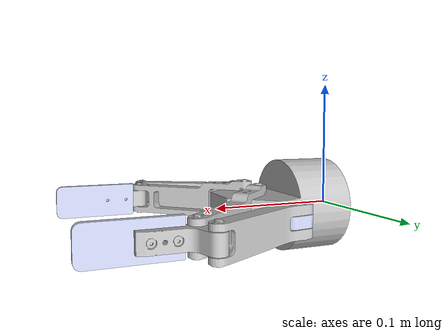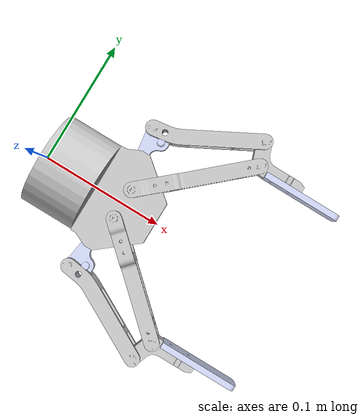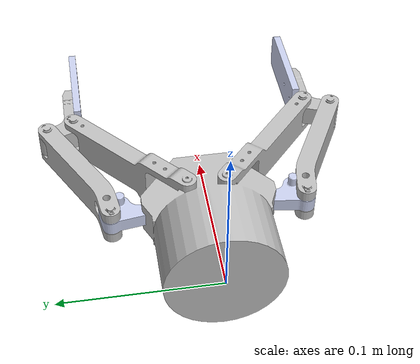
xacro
<?xml version="1.0"?>
<robot name="robotiq_2f_140" xmlns:xacro="http://ros.org/wiki/xacro">
  <xacro:include filename="$(find robotiq_description)/urdf/robotiq_2f_140/robotiq_2f_140.urdf.xacro" />
  <xacro:robotiq_2f_140 prefix=""/>

  <!-- world -->

</robot>

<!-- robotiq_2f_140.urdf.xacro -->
<robot xmlns:xacro="http://ros.org/wiki/xacro">

  <xacro:macro name="robotiq_2f_140_tcp" params="prefix">
    <link name="${prefix}tcp" />

    <joint name="${prefix}tcp_joint" type="fixed">
      <origin xyz="0.24127678495 0 0" rpy="0 0 0" />
      <parent link="${prefix}base_link" />
      <child link="${prefix}tcp" />
    </joint>
  </xacro:macro>

<xacro:macro name="inner_knuckle" params="prefix fingerprefix">
  <link name="${prefix}${fingerprefix}inner_knuckle">
    <inertial>
      <origin xyz="0.0361850676948983 -0.0331675189831137 -1.21207146841943E-08" rpy="0 0 0" />
      <mass value="0.0174460087279995" />
      <inertia
        ixx="1.15871030484505E-06"
        ixy="1.18962145386134E-06"
        ixz="-8.39568250113456E-14"
        iyy="1.41683380026142E-06"
        iyz="6.84207447322716E-14"
        izz="2.39357586071014E-06" />
    </inertial>
    <visual>
      <origin xyz="0 0 0" rpy="0 0 0" />
      <geometry>
        <mesh filename="package://robotiq_description/meshes/robotiq_2f_140/visual/inner_knuckle.dae" />
      </geometry>
      <material name="">
        <color rgba="0.752941176470588 0.752941176470588 0.752941176470588 1" />
      </material>
    </visual>
    <collision>
      <origin xyz="0 0 0" rpy="0 0 0" />
      <geometry>
        <mesh filename="package://robotiq_description/meshes/robotiq_2f_140/collision/inner_knuckle.stl" />
      </geometry>
    </collision>
  </link>
</xacro:macro>

<xacro:macro name="outer_knuckle" params="prefix fingerprefix">
  <link name="${prefix}${fingerprefix}outer_knuckle">
    <inertial>
      <origin xyz="0.000553430078305425 -0.0113324166394055 -2.069203532776E-08" rpy="0 0 0" />
      <mass value="0.00786620962275458" />
      <inertia
        ixx="0"
        ixy="0"
        ixz="0"
        iyy="0"
        iyz="0"
        izz="0" />
    </inertial>
    <visual>
      <origin xyz="0 0 0" rpy="0 0 0" />
      <geometry>
        <mesh filename="package://robotiq_description/meshes/robotiq_2f_140/visual/outer_knuckle.dae" />
      </geometry>
      <material name="">
        <color rgba="0.792156862745098 0.819607843137255 0.933333333333333 1" />
      </material>
    </visual>
    <collision>
      <origin xyz="0 0 0" rpy="0 0 0" />
      <geometry>
        <mesh filename="package://robotiq_description/meshes/robotiq_2f_140/collision/outer_knuckle.stl" />
      </geometry>
    </collision>
  </link>
</xacro:macro>

<xacro:macro name="outer_finger" params="prefix fingerprefix">
  <link name="${prefix}${fingerprefix}outer_finger">
    <inertial>
      <origin xyz="0.037582513422451 -0.0147933878405319 1.75722175258395E-09" rpy="0 0 0" />
      <mass value="0.0164998179601088" />
      <inertia
        ixx="3.63881150640202E-07"
        ixy="7.77163079871056E-07"
        ixz="3.83932554975091E-15"
        iyy="1.72399139003576E-06"
        iyz="-6.12077326039638E-15"
        izz="2.0741644702864E-06" />
    </inertial>
    <visual>
      <origin xyz="0 0 0" rpy="0 0 0" />
      <geometry>
        <mesh filename="package://robotiq_description/meshes/robotiq_2f_140/visual/outer_finger.dae" />
      </geometry>
      <material name="">
        <color rgba="0.752941176470588 0.752941176470588 0.752941176470588 1" />
      </material>
    </visual>
    <collision>
      <origin xyz="0 0 0" rpy="0 0 0" />
      <geometry>
        <mesh filename="package://robotiq_description/meshes/robotiq_2f_140/collision/outer_finger.stl" />
      </geometry>
    </collision>
  </link>
</xacro:macro>

<xacro:macro name="inner_finger" params="prefix fingerprefix">
  <link name="${prefix}${fingerprefix}inner_finger">
    <inertial>
      <origin xyz="0.0138261523043157 0.012041065004881 -2.07110001536426E-15" rpy="0 0 0" />
      <mass value="0.00728069074391804" />
      <inertia
        ixx="2.80233056217759E-09"
        ixy="-1.06385436552863E-08"
        ixz="-6.39274552405216E-21"
        iyy="5.288119896764E-08"
        iyz="-1.63868227162773E-21"
        izz="5.56835295298176E-08" />
    </inertial>
    <visual>
      <origin xyz="0 0 0" rpy="0 0 0" />
      <geometry>
        <mesh filename="package://robotiq_description/meshes/robotiq_2f_140/visual/inner_finger.dae" />
      </geometry>
      <material name="">
        <color rgba="0.752941176470588 0.752941176470588 0.752941176470588 1" />
      </material>
    </visual>
    <collision>
      <origin xyz="0 0 0" rpy="0 0 0" />
      <geometry>
        <mesh filename="package://robotiq_description/meshes/robotiq_2f_140/collision/inner_finger.stl" />
      </geometry>
    </collision>
  </link>
</xacro:macro>

<xacro:macro name="fingertip" params="prefix fingerprefix">
  <link name="${prefix}${fingerprefix}fingertip">
    <inertial>
      <origin xyz="-0.000109801182224895 0.00317755672771076 6.71012101645093E-17" rpy="0 0 0" />
      <mass value="0.0110245686419432" />
      <inertia
        ixx="2.08902759828054E-08"
        ixy="4.60038120722903E-10"
        ixz="1.38333794517888E-23"
        iyy="1.01307935181161E-11"
        iyz="-6.28172104669565E-22"
        izz="2.09004067763235E-08" />
    </inertial>
    <visual>
      <origin xyz="0 0 0" rpy="0 0 0" />
      <geometry>
        <mesh filename="package://robotiq_description/meshes/robotiq_2f_140/visual/fingertip.dae" />
      </geometry>
      <material name="">
        <color rgba="0.792156862745098 0.819607843137255 0.933333333333333 1" />
      </material>
    </visual>
    <collision>
      <origin xyz="0 0 0" rpy="0 0 0" />
      <geometry>
        <mesh filename="package://robotiq_description/meshes/robotiq_2f_140/collision/fingertip.stl" />
      </geometry>
    </collision>
  </link>
</xacro:macro>

<xacro:macro name="fingerpad" params="prefix fingerprefix">
  <link name="${prefix}${fingerprefix}fingerpad"/>
</xacro:macro>

<xacro:macro name="inner_knuckle_joint" params="prefix fingerprefix reflect">
  <joint name="${prefix}${fingerprefix}inner_knuckle_joint" type="revolute">
    <origin xyz="0.06942 ${reflect * -0.0127} 0" rpy="${(reflect -1)*0} ${(reflect -1)*pi/2} ${(reflect -1)*pi/2}" />
    <parent link="${prefix}base_link" />
    <child link="${prefix}${fingerprefix}inner_knuckle" />
    <axis xyz="0 0 1" />
    <limit lower="-3.14" upper="3.14" velocity="2.0" effort="176" />
    <mimic joint="${prefix}left_outer_knuckle_joint" multiplier="${1}" offset="0" />
  </joint>
</xacro:macro>

<xacro:macro name="left_outer_knuckle_joint" params="prefix">
  <joint name="${prefix}left_outer_knuckle_joint" type="revolute">
    <origin xyz="0.062905 0.030601 0" rpy="0 ${pi} ${pi}" />
    <parent link="${prefix}base_link" />
    <child link="${prefix}left_outer_knuckle" />
    <axis xyz="0 0 1" />
    <limit lower="0" upper="0.786522656" velocity="2.0" effort="176" />
  </joint>
</xacro:macro>

<!-- y = ${5.8749050196226E-17 + pi}-->
<xacro:macro name="right_outer_knuckle_joint" params="prefix">
  <joint name="${prefix}right_outer_knuckle_joint" type="revolute">
    <origin xyz="0.062905 -0.030601 0" rpy="0 0 0" />
    <parent link="${prefix}base_link" />
    <child link="${prefix}right_outer_knuckle" />
    <axis xyz="0 0 1" />
    <limit lower="-3.14" upper="3.14" velocity="2.0" effort="176" />
    <mimic joint="${prefix}left_outer_knuckle_joint" multiplier="1" offset="0" />
  </joint>
</xacro:macro>

<xacro:macro name="outer_finger_joint" params="prefix fingerprefix">
  <joint name="${prefix}${fingerprefix}outer_finger_joint" type="fixed">
    <origin xyz="-0.0045554 -0.031421 0" rpy="0 0 0" />
    <parent link="${prefix}${fingerprefix}outer_knuckle" />
    <child link="${prefix}${fingerprefix}outer_finger" />
  </joint>
</xacro:macro>

<xacro:macro name="inner_finger_joint" params="prefix fingerprefix">
  <joint name="${prefix}${fingerprefix}inner_finger_joint" type="revolute">
    <origin xyz="0.078873 -0.035489 0" rpy="0 0 0" />
     <parent link="${prefix}${fingerprefix}outer_finger" />
    <child link="${prefix}${fingerprefix}inner_finger" />
    <axis xyz="0 0 1" />
    <limit lower="-3.14" upper="3.14" velocity="2.0" effort="176" />
    <mimic joint="${prefix}left_outer_knuckle_joint" multiplier="-1" offset="0" />
  </joint>
</xacro:macro>

<xacro:macro name="fingertip_joint" params="prefix fingerprefix">
  <joint name="${prefix}${fingerprefix}fingertip_joint" type="fixed">
    <origin xyz="0.046015 0.018901 0" rpy="0 0 0" />
    <parent link="${prefix}${fingerprefix}inner_finger" />
    <child link="${prefix}${fingerprefix}fingertip" />
  </joint>
</xacro:macro>

<xacro:macro name="fingerpad_joint" params="prefix fingerprefix">
  <joint name="${prefix}${fingerprefix}fingerpad_joint" type="fixed">
    <origin xyz="0 0.0068 0" rpy="0 0 0" />
    <parent link="${prefix}${fingerprefix}fingertip" />
    <child link="${prefix}${fingerprefix}fingerpad" />
  </joint>
</xacro:macro>
<xacro:macro name="robotiq_2f_140" params="prefix">

  <link name="${prefix}base_link">
    <inertial>
      <origin xyz="0.0349137712216298 -0.000307415638406242 -1.86112821823436E-05" rpy="0 0 0" />
      <mass value="0.124496292726075" />
      <inertia
        ixx="1.77198801578171E-05"
        ixy="-1.20168637369256E-06"
        ixz="-7.33154410139097E-08"
        iyy="6.51416874558209E-05"
        iyz="-3.67584779427649E-09"
        izz="4.97965327837907E-05" />
    </inertial>
    <visual>
      <origin xyz="0 0 0" rpy="0 0 0" />
      <geometry>
        <mesh filename="package://robotiq_description/meshes/robotiq_2f_140/visual/base_link.dae" />
      </geometry>
      <material name="">
        <color rgba="0.752941176470588 0.752941176470588 0.752941176470588 1" />
      </material>
    </visual>
    <collision>
      <origin xyz="0 0 0" rpy="0 0 0" />
      <geometry>
        <mesh filename="package://robotiq_description/meshes/robotiq_2f_140/collision/base_link.stl" />
      </geometry>
    </collision>
  </link>

  <!-- Transmission -->
  <xacro:include filename="$(find robotiq_description)/urdf/robotiq_2f_140/robotiq_2f_140.transmission.xacro" />
  <xacro:robotiq_2f_140_transmission prefix="${prefix}" />

  <!-- TCP -->
  <xacro:robotiq_2f_140_tcp prefix="${prefix}" />

  <!-- Left gripper link/joints -->
  <xacro:outer_knuckle prefix="${prefix}" fingerprefix="left_" />
  <xacro:inner_knuckle prefix="${prefix}" fingerprefix="left_" />
  <xacro:outer_finger prefix="${prefix}" fingerprefix="left_" />
  <xacro:inner_finger prefix="${prefix}" fingerprefix="left_" />
  <xacro:fingertip prefix="${prefix}" fingerprefix="left_" />
  <xacro:fingerpad prefix="${prefix}" fingerprefix="left_" />

  <xacro:left_outer_knuckle_joint prefix="${prefix}" />
  <xacro:inner_knuckle_joint prefix="${prefix}" fingerprefix="left_" reflect="-1" />
  <xacro:outer_finger_joint prefix="${prefix}" fingerprefix="left_" />
  <xacro:inner_finger_joint prefix="${prefix}" fingerprefix="left_" />
  <xacro:fingertip_joint prefix="${prefix}" fingerprefix="left_" />
  <xacro:fingerpad_joint prefix="${prefix}" fingerprefix="left_" />

  <!-- Right gripper link/joints -->
  <xacro:outer_knuckle prefix="${prefix}" fingerprefix="right_" />
  <xacro:outer_finger prefix="${prefix}" fingerprefix="right_" />
  <xacro:inner_knuckle prefix="${prefix}" fingerprefix="right_" />
  <xacro:inner_finger prefix="${prefix}" fingerprefix="right_" />
  <xacro:fingertip prefix="${prefix}" fingerprefix="right_" />
  <xacro:fingerpad prefix="${prefix}" fingerprefix="right_" />

  <xacro:right_outer_knuckle_joint prefix="${prefix}" />
  <xacro:outer_finger_joint prefix="${prefix}" fingerprefix="right_" />
  <xacro:inner_knuckle_joint prefix="${prefix}" fingerprefix="right_" reflect="1" />
  <xacro:inner_finger_joint prefix="${prefix}" fingerprefix="right_" />
  <xacro:fingertip_joint prefix="${prefix}" fingerprefix="right_" />
  <xacro:fingerpad_joint prefix="${prefix}" fingerprefix="right_" />

</xacro:macro>
</robot>
